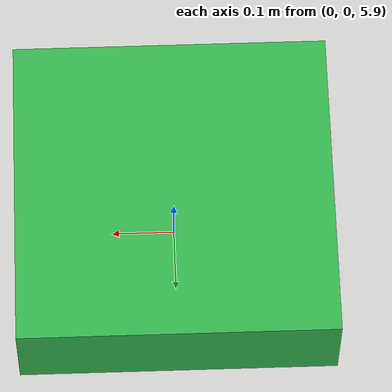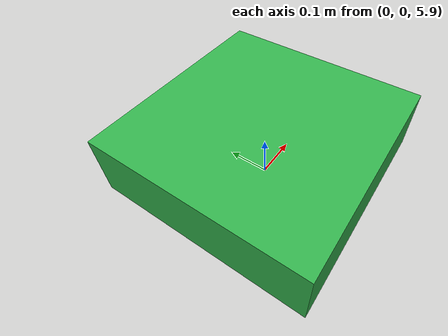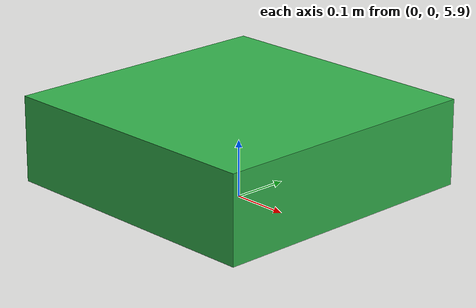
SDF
<?xml version="1.0"?>
<sdf version="1.8">
  <model name="aura_drone">
    <link name="link">
      <pose>0 0 6 0 0 0</pose>
      <inertial><mass>2</mass></inertial>
      <collision name="collision">
        <geometry><box><size>0.5 0.5 0.15</size></box></geometry>
      </collision>
      <visual name="visual">
        <geometry><box><size>0.5 0.5 0.15</size></box></geometry>
        <material><ambient>0.2 0.7 0.3 1</ambient></material>
      </visual>
    </link>
  </model>
</sdf>
